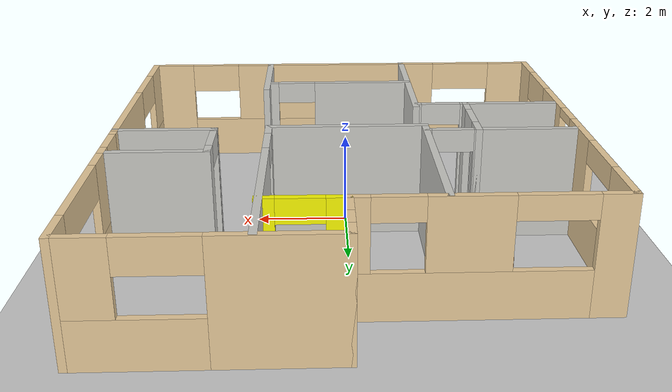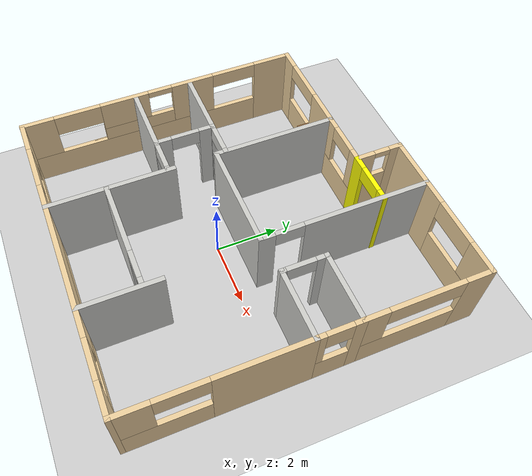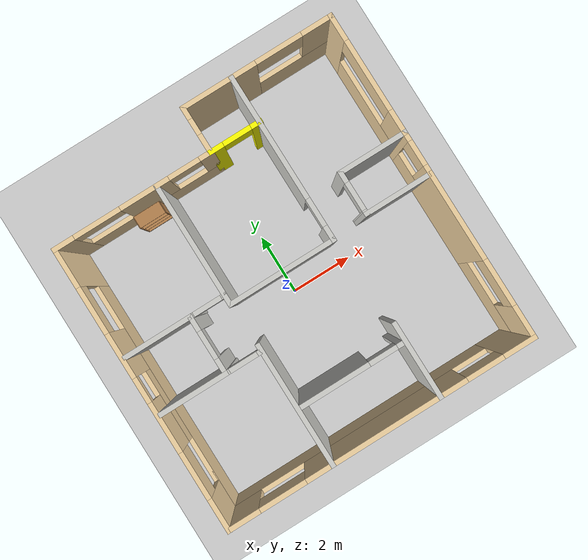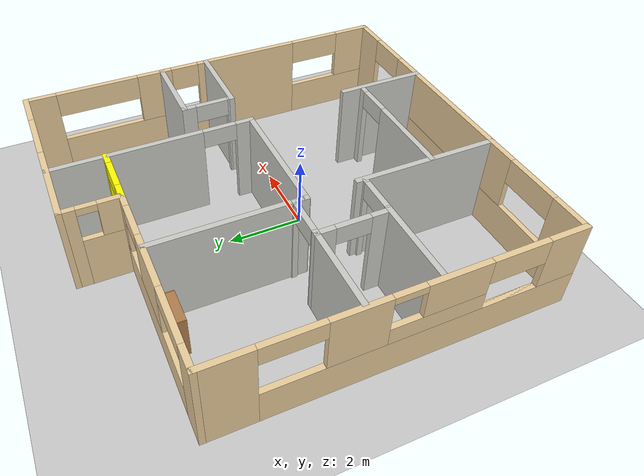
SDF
<sdf version="1.7">
 <world name="default">
  <model name="ground_plane">
   <static>1</static>
   <link name="link">
    <collision name="collision">
     <geometry><plane><normal>0 0 1</normal><size>100 100</size></plane></geometry>
     <surface>
      <contact><collide_bitmask>65535</collide_bitmask></contact>
      <friction><ode><mu>100</mu><mu2>50</mu2></ode></friction>
     </surface>
    </collision>
    <visual name="visual">
     <cast_shadows>0</cast_shadows>
     <geometry><plane><normal>0 0 1</normal><size>100 100</size></plane></geometry>
     <material>
      <script><uri>file://media/materials/scripts/gazebo.material</uri><name>Gazebo/Grey</name></script>
     </material>
    </visual>
   </link>
  </model>
  <model name="house">
   <pose>-0.04268 0.71028 0 0 -0 0</pose>
   <link name="Wall_107">
    <collision name="Wall_107_Collision">
     <geometry><box><size>2.5 0.15 2.5</size></box></geometry>
     <pose>0 0 1.25 0 -0 0</pose>
    </collision>
    <visual name="Wall_107_Visual">
     <pose>0 0 1.25 0 -0 0</pose>
     <geometry><box><size>2.5 0.15 2.5</size></box></geometry>
     <material>
      <script><uri>file://media/materials/scripts/gazebo.material</uri><name>Gazebo/CeilingTiled</name></script>
      <ambient>1 1 0 1</ambient>
     </material>
     <meta><layer>0</layer></meta>
    </visual>
    <pose>1.9029 -4.09927 0 0 -0 -1.5708</pose>
   </link>
   <link name="Wall_109">
    <collision name="Wall_109_Collision">
     <geometry><box><size>4 0.15 2.5</size></box></geometry>
     <pose>0 0 1.25 0 -0 0</pose>
    </collision>
    <visual name="Wall_109_Visual">
     <pose>0 0 1.25 0 -0 0</pose>
     <geometry><box><size>4 0.15 2.5</size></box></geometry>
     <material>
      <script><uri>file://media/materials/scripts/gazebo.material</uri><name>Gazebo/CeilingTiled</name></script>
      <ambient>1 1 0 1</ambient>
     </material>
     <meta><layer>0</layer></meta>
    </visual>
    <pose>-1.60432 -3.35052 0 0 -0 1.5708</pose>
   </link>
   <link name="Wall_120">
    <pose>-4.9695 -0.7265 0 0 -0 -1.5708</pose>
    <visual name="Wall_120_Visual_0">
     <pose>-3.96516 0 1.25 0 -0 0</pose>
     <geometry><box><size>1.31967 0.15 2.5</size></box></geometry>
     <material>
      <script><uri>file://media/materials/scripts/gazebo.material</uri><name>Gazebo/Grey</name></script>
      <ambient>0.921569 0.807843 0.615686 1</ambient>
     </material>
     <meta><layer>0</layer></meta>
    </visual>
    <collision name="Wall_120_Collision_0">
     <geometry><box><size>1.31967 0.15 2.5</size></box></geometry>
     <pose>-3.96516 0 1.25 0 -0 0</pose>
    </collision>
    <visual name="Wall_120_Visual_1">
     <pose>0.659837 0 0.5 0 -0 0</pose>
     <geometry><box><size>7.93032 0.15 1</size></box></geometry>
     <material>
      <script><uri>file://media/materials/scripts/gazebo.material</uri><name>Gazebo/Grey</name></script>
      <ambient>0.921569 0.807843 0.615686 1</ambient>
     </material>
     <meta><layer>0</layer></meta>
    </visual>
    <collision name="Wall_120_Collision_1">
     <geometry><box><size>7.93032 0.15 1</size></box></geometry>
     <pose>0.659837 0 0.5 0 -0 0</pose>
    </collision>
    <visual name="Wall_120_Visual_2">
     <pose>-1.08602 0 1.75 0 -0 0</pose>
     <geometry><box><size>1.4386 0.15 1.5</size></box></geometry>
     <material>
      <script><uri>file://media/materials/scripts/gazebo.material</uri><name>Gazebo/Grey</name></script>
      <ambient>0.921569 0.807843 0.615686 1</ambient>
     </material>
     <meta><layer>0</layer></meta>
    </visual>
    <collision name="Wall_120_Collision_2">
     <geometry><box><size>1.4386 0.15 1.5</size></box></geometry>
     <pose>-1.08602 0 1.75 0 -0 0</pose>
    </collision>
    <visual name="Wall_120_Visual_3">
     <pose>4.08435 0 1.75 0 -0 0</pose>
     <geometry><box><size>1.0813 0.15 1.5</size></box></geometry>
     <material>
      <script><uri>file://media/materials/scripts/gazebo.material</uri><name>Gazebo/Grey</name></script>
      <ambient>0.921569 0.807843 0.615686 1</ambient>
     </material>
     <meta><layer>0</layer></meta>
    </visual>
    <collision name="Wall_120_Collision_3">
     <geometry><box><size>1.0813 0.15 1.5</size></box></geometry>
     <pose>4.08435 0 1.75 0 -0 0</pose>
    </collision>
    <visual name="Wall_120_Visual_4">
     <pose>0.838487 0 1.25 0 -0 0</pose>
     <geometry><box><size>2.41042 0.15 0.5</size></box></geometry>
     <material>
      <script><uri>file://media/materials/scripts/gazebo.material</uri><name>Gazebo/Grey</name></script>
      <ambient>0.921569 0.807843 0.615686 1</ambient>
     </material>
     <meta><layer>0</layer></meta>
    </visual>
    <collision name="Wall_120_Collision_4">
     <geometry><box><size>2.41042 0.15 0.5</size></box></geometry>
     <pose>0.838487 0 1.25 0 -0 0</pose>
    </collision>
    <visual name="Wall_120_Visual_5">
     <pose>2.7937 0 1 0 -0 0</pose>
     <geometry><box><size>1.5 0.15 0</size></box></geometry>
     <material>
      <script><uri>file://media/materials/scripts/gazebo.material</uri><name>Gazebo/Grey</name></script>
      <ambient>0.921569 0.807843 0.615686 1</ambient>
     </material>
     <meta><layer>0</layer></meta>
    </visual>
    <collision name="Wall_120_Collision_5">
     <geometry><box><size>1.5 0.15 0</size></box></geometry>
     <pose>2.7937 0 1 0 -0 0</pose>
    </collision>
    <visual name="Wall_120_Visual_6">
     <pose>1.23849 0 2 0 -0 0</pose>
     <geometry><box><size>1.61042 0.15 1</size></box></geometry>
     <material>
      <script><uri>file://media/materials/scripts/gazebo.material</uri><name>Gazebo/Grey</name></script>
      <ambient>0.921569 0.807843 0.615686 1</ambient>
     </material>
     <meta><layer>0</layer></meta>
    </visual>
    <collision name="Wall_120_Collision_6">
     <geometry><box><size>1.61042 0.15 1</size></box></geometry>
     <pose>1.23849 0 2 0 -0 0</pose>
    </collision>
    <visual name="Wall_120_Visual_7">
     <pose>2.7937 0 2.15 0 -0 0</pose>
     <geometry><box><size>1.5 0.15 0.7</size></box></geometry>
     <material>
      <script><uri>file://media/materials/scripts/gazebo.material</uri><name>Gazebo/Grey</name></script>
      <ambient>0.921569 0.807843 0.615686 1</ambient>
     </material>
     <meta><layer>0</layer></meta>
    </visual>
    <collision name="Wall_120_Collision_7">
     <geometry><box><size>1.5 0.15 0.7</size></box></geometry>
     <pose>2.7937 0 2.15 0 -0 0</pose>
    </collision>
    <visual name="Wall_120_Visual_8">
     <pose>-2.55532 0 2.25 0 -0 0</pose>
     <geometry><box><size>1.5 0.15 0.5</size></box></geometry>
     <material>
      <script><uri>file://media/materials/scripts/gazebo.material</uri><name>Gazebo/Grey</name></script>
      <ambient>0.921569 0.807843 0.615686 1</ambient>
     </material>
     <meta><layer>0</layer></meta>
    </visual>
    <collision name="Wall_120_Collision_8">
     <geometry><box><size>1.5 0.15 0.5</size></box></geometry>
     <pose>-2.55532 0 2.25 0 -0 0</pose>
    </collision>
    <visual name="Wall_120_Visual_9">
     <pose>0.033278 0 2.4 0 -0 0</pose>
     <geometry><box><size>0.8 0.15 0.2</size></box></geometry>
     <material>
      <script><uri>file://media/materials/scripts/gazebo.material</uri><name>Gazebo/Grey</name></script>
      <ambient>0.921569 0.807843 0.615686 1</ambient>
     </material>
     <meta><layer>0</layer></meta>
    </visual>
    <collision name="Wall_120_Collision_9">
     <geometry><box><size>0.8 0.15 0.2</size></box></geometry>
     <pose>0.033278 0 2.4 0 -0 0</pose>
    </collision>
   </link>
   <link name="Wall_131">
    <pose>-2.774 -0.669222 0 0 -0 1.5708</pose>
    <visual name="Wall_131_Visual_0">
     <pose>-0.72 0 1.25 0 -0 0</pose>
     <geometry><box><size>0.559999 0.15 2.5</size></box></geometry>
     <material>
      <script><uri>file://media/materials/scripts/gazebo.material</uri><name>Gazebo/CeilingTiled</name></script>
      <ambient>1 1 0 1</ambient>
     </material>
     <meta><layer>0</layer></meta>
    </visual>
    <collision name="Wall_131_Collision_0">
     <geometry><box><size>0.559999 0.15 2.5</size></box></geometry>
     <pose>-0.72 0 1.25 0 -0 0</pose>
    </collision>
    <visual name="Wall_131_Visual_1">
     <pose>0.73 0 1.25 0 -0 0</pose>
     <geometry><box><size>0.540001 0.15 2.5</size></box></geometry>
     <material>
      <script><uri>file://media/materials/scripts/gazebo.material</uri><name>Gazebo/CeilingTiled</name></script>
      <ambient>1 1 0 1</ambient>
     </material>
     <meta><layer>0</layer></meta>
    </visual>
    <collision name="Wall_131_Collision_1">
     <geometry><box><size>0.540001 0.15 2.5</size></box></geometry>
     <pose>0.73 0 1.25 0 -0 0</pose>
    </collision>
    <visual name="Wall_131_Visual_2">
     <pose>0.009999 0 2.25 0 -0 0</pose>
     <geometry><box><size>0.9 0.15 0.5</size></box></geometry>
     <material>
      <script><uri>file://media/materials/scripts/gazebo.material</uri><name>Gazebo/CeilingTiled</name></script>
      <ambient>1 1 0 1</ambient>
     </material>
     <meta><layer>0</layer></meta>
    </visual>
    <collision name="Wall_131_Collision_2">
     <geometry><box><size>0.9 0.15 0.5</size></box></geometry>
     <pose>0.009999 0 2.25 0 -0 0</pose>
    </collision>
   </link>
   <link name="Wall_132">
    <collision name="Wall_132_Collision">
     <geometry><box><size>2.25 0.15 2.5</size></box></geometry>
     <pose>0 0 1.25 0 -0 0</pose>
    </collision>
    <visual name="Wall_132_Visual">
     <pose>0 0 1.25 0 -0 0</pose>
     <geometry><box><size>2.25 0.15 2.5</size></box></geometry>
     <material>
      <script><uri>file://media/materials/scripts/gazebo.material</uri><name>Gazebo/CeilingTiled</name></script>
      <ambient>1 1 0 1</ambient>
     </material>
     <meta><layer>0</layer></meta>
    </visual>
    <pose>-3.824 0.255778 0 0 -0 3.14159</pose>
   </link>
   <link name="Wall_137">
    <pose>-2.4195 3.8235 0 0 -0 0</pose>
    <visual name="Wall_137_Visual_0">
     <pose>-2.27291 0 1.25 0 -0 0</pose>
     <geometry><box><size>0.70419 0.15 2.5</size></box></geometry>
     <material>
      <script><uri>file://media/materials/scripts/gazebo.material</uri><name>Gazebo/Grey</name></script>
      <ambient>0.921569 0.807843 0.615686 1</ambient>
     </material>
     <meta><layer>0</layer></meta>
    </visual>
    <collision name="Wall_137_Collision_0">
     <geometry><box><size>0.70419 0.15 2.5</size></box></geometry>
     <pose>-2.27291 0 1.25 0 -0 0</pose>
    </collision>
    <visual name="Wall_137_Visual_1">
     <pose>0.352095 0 0.5 0 -0 0</pose>
     <geometry><box><size>4.54581 0.15 1</size></box></geometry>
     <material>
      <script><uri>file://media/materials/scripts/gazebo.material</uri><name>Gazebo/Grey</name></script>
      <ambient>0.921569 0.807843 0.615686 1</ambient>
     </material>
     <meta><layer>0</layer></meta>
    </visual>
    <collision name="Wall_137_Collision_1">
     <geometry><box><size>4.54581 0.15 1</size></box></geometry>
     <pose>0.352095 0 0.5 0 -0 0</pose>
    </collision>
    <visual name="Wall_137_Visual_2">
     <pose>0.373282 0 1.75 0 -0 0</pose>
     <geometry><box><size>1.58818 0.15 1.5</size></box></geometry>
     <material>
      <script><uri>file://media/materials/scripts/gazebo.material</uri><name>Gazebo/Grey</name></script>
      <ambient>0.921569 0.807843 0.615686 1</ambient>
     </material>
     <meta><layer>0</layer></meta>
    </visual>
    <collision name="Wall_137_Collision_2">
     <geometry><box><size>1.58818 0.15 1.5</size></box></geometry>
     <pose>0.373282 0 1.75 0 -0 0</pose>
    </collision>
    <visual name="Wall_137_Visual_3">
     <pose>2.39619 0 1.75 0 -0 0</pose>
     <geometry><box><size>0.457627 0.15 1.5</size></box></geometry>
     <material>
      <script><uri>file://media/materials/scripts/gazebo.material</uri><name>Gazebo/Grey</name></script>
      <ambient>0.921569 0.807843 0.615686 1</ambient>
     </material>
     <meta><layer>0</layer></meta>
    </visual>
    <collision name="Wall_137_Collision_3">
     <geometry><box><size>0.457627 0.15 1.5</size></box></geometry>
     <pose>2.39619 0 1.75 0 -0 0</pose>
    </collision>
    <visual name="Wall_137_Visual_4">
     <pose>-1.17081 0 2.25 0 -0 0</pose>
     <geometry><box><size>1.5 0.15 0.5</size></box></geometry>
     <material>
      <script><uri>file://media/materials/scripts/gazebo.material</uri><name>Gazebo/Grey</name></script>
      <ambient>0.921569 0.807843 0.615686 1</ambient>
     </material>
     <meta><layer>0</layer></meta>
    </visual>
    <collision name="Wall_137_Collision_4">
     <geometry><box><size>1.5 0.15 0.5</size></box></geometry>
     <pose>-1.17081 0 2.25 0 -0 0</pose>
    </collision>
    <visual name="Wall_137_Visual_5">
     <pose>1.66737 0 2.25 0 -0 0</pose>
     <geometry><box><size>1 0.15 0.5</size></box></geometry>
     <material>
      <script><uri>file://media/materials/scripts/gazebo.material</uri><name>Gazebo/Grey</name></script>
      <ambient>0.921569 0.807843 0.615686 1</ambient>
     </material>
     <meta><layer>0</layer></meta>
    </visual>
    <collision name="Wall_137_Collision_5">
     <geometry><box><size>1 0.15 0.5</size></box></geometry>
     <pose>1.66737 0 2.25 0 -0 0</pose>
    </collision>
   </link>
   <link name="Wall_142">
    <pose>0.094094 -3.47845 0 0 -0 0</pose>
    <visual name="Wall_142_Visual_0">
     <pose>-0.559233 0 1.25 0 -0 0</pose>
     <geometry><box><size>2.38153 0.15 2.5</size></box></geometry>
     <material>
      <script><uri>file://media/materials/scripts/gazebo.material</uri><name>Gazebo/CeilingTiled</name></script>
      <ambient>1 1 0 1</ambient>
     </material>
     <meta><layer>0</layer></meta>
    </visual>
    <collision name="Wall_142_Collision_0">
     <geometry><box><size>2.38153 0.15 2.5</size></box></geometry>
     <pose>-0.559233 0 1.25 0 -0 0</pose>
    </collision>
    <visual name="Wall_142_Visual_1">
     <pose>1.64077 0 1.25 0 -0 0</pose>
     <geometry><box><size>0.218467 0.15 2.5</size></box></geometry>
     <material>
      <script><uri>file://media/materials/scripts/gazebo.material</uri><name>Gazebo/CeilingTiled</name></script>
      <ambient>1 1 0 1</ambient>
     </material>
     <meta><layer>0</layer></meta>
    </visual>
    <collision name="Wall_142_Collision_1">
     <geometry><box><size>0.218467 0.15 2.5</size></box></geometry>
     <pose>1.64077 0 1.25 0 -0 0</pose>
    </collision>
    <visual name="Wall_142_Visual_2">
     <pose>1.08153 0 2.25 0 -0 0</pose>
     <geometry><box><size>0.9 0.15 0.5</size></box></geometry>
     <material>
      <script><uri>file://media/materials/scripts/gazebo.material</uri><name>Gazebo/CeilingTiled</name></script>
      <ambient>1 1 0 1</ambient>
     </material>
     <meta><layer>0</layer></meta>
    </visual>
    <collision name="Wall_142_Collision_2">
     <geometry><box><size>0.9 0.15 0.5</size></box></geometry>
     <pose>1.08153 0 2.25 0 -0 0</pose>
    </collision>
   </link>
   <link name="Wall_144">
    <pose>-2.224 -1.59422 0 0 -0 0</pose>
    <visual name="Wall_144_Visual_0">
     <pose>-0.522492 0 1.25 0 -0 0</pose>
     <geometry><box><size>0.205015 0.15 2.5</size></box></geometry>
     <material>
      <script><uri>file://media/materials/scripts/gazebo.material</uri><name>Gazebo/CeilingTiled</name></script>
      <ambient>1 1 0 1</ambient>
     </material>
     <meta><layer>0</layer></meta>
    </visual>
    <collision name="Wall_144_Collision_0">
     <geometry><box><size>0.205015 0.15 2.5</size></box></geometry>
     <pose>-0.522492 0 1.25 0 -0 0</pose>
    </collision>
    <visual name="Wall_144_Visual_1">
     <pose>0.552508 0 1.25 0 -0 0</pose>
     <geometry><box><size>0.144985 0.15 2.5</size></box></geometry>
     <material>
      <script><uri>file://media/materials/scripts/gazebo.material</uri><name>Gazebo/CeilingTiled</name></script>
      <ambient>1 1 0 1</ambient>
     </material>
     <meta><layer>0</layer></meta>
    </visual>
    <collision name="Wall_144_Collision_1">
     <geometry><box><size>0.144985 0.15 2.5</size></box></geometry>
     <pose>0.552508 0 1.25 0 -0 0</pose>
    </collision>
    <visual name="Wall_144_Visual_2">
     <pose>0.030015 0 2.25 0 -0 0</pose>
     <geometry><box><size>0.9 0.15 0.5</size></box></geometry>
     <material>
      <script><uri>file://media/materials/scripts/gazebo.material</uri><name>Gazebo/CeilingTiled</name></script>
      <ambient>1 1 0 1</ambient>
     </material>
     <meta><layer>0</layer></meta>
    </visual>
    <collision name="Wall_144_Collision_2">
     <geometry><box><size>0.9 0.15 0.5</size></box></geometry>
     <pose>0.030015 0 2.25 0 -0 0</pose>
    </collision>
   </link>
   <link name="Wall_148">
    <pose>-2.224 0.255778 0 0 -0 0</pose>
    <visual name="Wall_148_Visual_0">
     <pose>-0.534251 0 1.25 0 -0 0</pose>
     <geometry><box><size>0.181499 0.15 2.5</size></box></geometry>
     <material>
      <script><uri>file://media/materials/scripts/gazebo.material</uri><name>Gazebo/CeilingTiled</name></script>
      <ambient>1 1 0 1</ambient>
     </material>
     <meta><layer>0</layer></meta>
    </visual>
    <collision name="Wall_148_Collision_0">
     <geometry><box><size>0.181499 0.15 2.5</size></box></geometry>
     <pose>-0.534251 0 1.25 0 -0 0</pose>
    </collision>
    <visual name="Wall_148_Visual_1">
     <pose>0.540749 0 1.25 0 -0 0</pose>
     <geometry><box><size>0.168501 0.15 2.5</size></box></geometry>
     <material>
      <script><uri>file://media/materials/scripts/gazebo.material</uri><name>Gazebo/CeilingTiled</name></script>
      <ambient>1 1 0 1</ambient>
     </material>
     <meta><layer>0</layer></meta>
    </visual>
    <collision name="Wall_148_Collision_1">
     <geometry><box><size>0.168501 0.15 2.5</size></box></geometry>
     <pose>0.540749 0 1.25 0 -0 0</pose>
    </collision>
    <visual name="Wall_148_Visual_2">
     <pose>0.006499 0 2.25 0 -0 0</pose>
     <geometry><box><size>0.9 0.15 0.5</size></box></geometry>
     <material>
      <script><uri>file://media/materials/scripts/gazebo.material</uri><name>Gazebo/CeilingTiled</name></script>
      <ambient>1 1 0 1</ambient>
     </material>
     <meta><layer>0</layer></meta>
    </visual>
    <collision name="Wall_148_Collision_2">
     <geometry><box><size>0.9 0.15 0.5</size></box></geometry>
     <pose>0.006499 0 2.25 0 -0 0</pose>
    </collision>
   </link>
   <link name="Wall_159">
    <pose>1.7115 2.606 0 0 -0 1.5708</pose>
    <visual name="Wall_159_Visual_0">
     <pose>-2.465 0 1.25 0 -0 0</pose>
     <geometry><box><size>0.520748 0.15 2.5</size></box></geometry>
     <material>
      <script><uri>file://media/materials/scripts/gazebo.material</uri><name>Gazebo/CeilingTiled</name></script>
      <ambient>1 1 0 1</ambient>
     </material>
     <meta><layer>0</layer></meta>
    </visual>
    <collision name="Wall_159_Collision_0">
     <geometry><box><size>0.520748 0.15 2.5</size></box></geometry>
     <pose>-2.465 0 1.25 0 -0 0</pose>
    </collision>
    <visual name="Wall_159_Visual_1">
     <pose>0.710374 0 1.25 0 -0 0</pose>
     <geometry><box><size>4.02999 0.15 2.5</size></box></geometry>
     <material>
      <script><uri>file://media/materials/scripts/gazebo.material</uri><name>Gazebo/CeilingTiled</name></script>
      <ambient>1 1 0 1</ambient>
     </material>
     <meta><layer>0</layer></meta>
    </visual>
    <collision name="Wall_159_Collision_1">
     <geometry><box><size>4.02999 0.15 2.5</size></box></geometry>
     <pose>0.710374 0 1.25 0 -0 0</pose>
    </collision>
    <visual name="Wall_159_Visual_2">
     <pose>-1.75462 0 2.25 0 -0 0</pose>
     <geometry><box><size>0.9 0.15 0.5</size></box></geometry>
     <material>
      <script><uri>file://media/materials/scripts/gazebo.material</uri><name>Gazebo/CeilingTiled</name></script>
      <ambient>1 1 0 1</ambient>
     </material>
     <meta><layer>0</layer></meta>
    </visual>
    <collision name="Wall_159_Collision_2">
     <geometry><box><size>0.9 0.15 0.5</size></box></geometry>
     <pose>-1.75462 0 2.25 0 -0 0</pose>
    </collision>
   </link>
   <link name="Wall_161">
    <pose>0.9305 3.8235 0 0 -0 0</pose>
    <visual name="Wall_161_Visual_0">
     <pose>-0.637254 0 1.25 0 -0 0</pose>
     <geometry><box><size>0.475492 0.15 2.5</size></box></geometry>
     <material>
      <script><uri>file://media/materials/scripts/gazebo.material</uri><name>Gazebo/Grey</name></script>
      <ambient>1 1 0 1</ambient>
     </material>
     <meta><layer>0</layer></meta>
    </visual>
    <collision name="Wall_161_Collision_0">
     <geometry><box><size>0.475492 0.15 2.5</size></box></geometry>
     <pose>-0.637254 0 1.25 0 -0 0</pose>
    </collision>
    <visual name="Wall_161_Visual_1">
     <pose>0.687746 0 1.25 0 -0 0</pose>
     <geometry><box><size>0.374508 0.15 2.5</size></box></geometry>
     <material>
      <script><uri>file://media/materials/scripts/gazebo.material</uri><name>Gazebo/Grey</name></script>
      <ambient>1 1 0 1</ambient>
     </material>
     <meta><layer>0</layer></meta>
    </visual>
    <collision name="Wall_161_Collision_1">
     <geometry><box><size>0.374508 0.15 2.5</size></box></geometry>
     <pose>0.687746 0 1.25 0 -0 0</pose>
    </collision>
    <visual name="Wall_161_Visual_2">
     <pose>0.050492 0 2.25 0 -0 0</pose>
     <geometry><box><size>0.9 0.15 0.5</size></box></geometry>
     <material>
      <script><uri>file://media/materials/scripts/gazebo.material</uri><name>Gazebo/Grey</name></script>
      <ambient>1 1 0 1</ambient>
     </material>
     <meta><layer>0</layer></meta>
    </visual>
    <collision name="Wall_161_Collision_2">
     <geometry><box><size>0.9 0.15 0.5</size></box></geometry>
     <pose>0.050492 0 2.25 0 -0 0</pose>
    </collision>
   </link>
   <link name="Wall_38">
    <pose>2.5445 5.2765 0 0 -0 0</pose>
    <visual name="Wall_38_Visual_0">
     <pose>-1.27127 0 1.25 0 -0 0</pose>
     <geometry><box><size>2.45747 0.15 2.5</size></box></geometry>
     <material>
      <script><uri>file://media/materials/scripts/gazebo.material</uri><name>Gazebo/Grey</name></script>
      <ambient>0.921569 0.807843 0.615686 1</ambient>
     </material>
     <meta><layer>0</layer></meta>
    </visual>
    <collision name="Wall_38_Collision_0">
     <geometry><box><size>2.45747 0.15 2.5</size></box></geometry>
     <pose>-1.27127 0 1.25 0 -0 0</pose>
    </collision>
    <visual name="Wall_38_Visual_1">
     <pose>1.22873 0 0.5 0 -0 0</pose>
     <geometry><box><size>2.54253 0.15 1</size></box></geometry>
     <material>
      <script><uri>file://media/materials/scripts/gazebo.material</uri><name>Gazebo/Grey</name></script>
      <ambient>0.921569 0.807843 0.615686 1</ambient>
     </material>
     <meta><layer>0</layer></meta>
    </visual>
    <collision name="Wall_38_Collision_1">
     <geometry><box><size>2.54253 0.15 1</size></box></geometry>
     <pose>1.22873 0 0.5 0 -0 0</pose>
    </collision>
    <visual name="Wall_38_Visual_2">
     <pose>1.97873 0 1.75 0 -0 0</pose>
     <geometry><box><size>1.04253 0.15 1.5</size></box></geometry>
     <material>
      <script><uri>file://media/materials/scripts/gazebo.material</uri><name>Gazebo/Grey</name></script>
      <ambient>0.921569 0.807843 0.615686 1</ambient>
     </material>
     <meta><layer>0</layer></meta>
    </visual>
    <collision name="Wall_38_Collision_2">
     <geometry><box><size>1.04253 0.15 1.5</size></box></geometry>
     <pose>1.97873 0 1.75 0 -0 0</pose>
    </collision>
    <visual name="Wall_38_Visual_3">
     <pose>0.707471 0 2.15 0 -0 0</pose>
     <geometry><box><size>1.5 0.15 0.7</size></box></geometry>
     <material>
      <script><uri>file://media/materials/scripts/gazebo.material</uri><name>Gazebo/Grey</name></script>
      <ambient>0.921569 0.807843 0.615686 1</ambient>
     </material>
     <meta><layer>0</layer></meta>
    </visual>
    <collision name="Wall_38_Collision_3">
     <geometry><box><size>1.5 0.15 0.7</size></box></geometry>
     <pose>0.707471 0 2.15 0 -0 0</pose>
    </collision>
   </link>
   <link name="Wall_59">
    <collision name="Wall_59_Collision">
     <geometry><box><size>2.25 0.15 2.5</size></box></geometry>
     <pose>0 0 1.25 0 -0 0</pose>
    </collision>
    <visual name="Wall_59_Visual">
     <pose>0 0 1.25 0 -0 0</pose>
     <geometry><box><size>2.25 0.15 2.5</size></box></geometry>
     <material>
      <script><uri>file://media/materials/scripts/gazebo.material</uri><name>Gazebo/CeilingTiled</name></script>
      <ambient>1 1 0 1</ambient>
     </material>
     <meta><layer>0</layer></meta>
    </visual>
    <pose>-3.824 -1.59422 0 0 -0 3.14159</pose>
   </link>
   <link name="Wall_62">
    <pose>0.1195 4.6015 0 0 -0 -1.5708</pose>
    <visual name="Wall_62_Visual_0">
     <pose>-0.527407 0 1.25 0 -0 0</pose>
     <geometry><box><size>0.445186 0.15 2.5</size></box></geometry>
     <material>
      <script><uri>file://media/materials/scripts/gazebo.material</uri><name>Gazebo/Grey</name></script>
      <ambient>0.921569 0.807843 0.615686 1</ambient>
     </material>
     <meta><layer>0</layer></meta>
    </visual>
    <collision name="Wall_62_Collision_0">
     <geometry><box><size>0.445186 0.15 2.5</size></box></geometry>
     <pose>-0.527407 0 1.25 0 -0 0</pose>
    </collision>
    <visual name="Wall_62_Visual_1">
     <pose>0.222593 0 0.75 0 -0 0</pose>
     <geometry><box><size>1.05481 0.15 1.5</size></box></geometry>
     <material>
      <script><uri>file://media/materials/scripts/gazebo.material</uri><name>Gazebo/Grey</name></script>
      <ambient>0.921569 0.807843 0.615686 1</ambient>
     </material>
     <meta><layer>0</layer></meta>
    </visual>
    <collision name="Wall_62_Collision_1">
     <geometry><box><size>1.05481 0.15 1.5</size></box></geometry>
     <pose>0.222593 0 0.75 0 -0 0</pose>
    </collision>
    <visual name="Wall_62_Visual_2">
     <pose>0.472593 0 2 0 -0 0</pose>
     <geometry><box><size>0.554814 0.15 1</size></box></geometry>
     <material>
      <script><uri>file://media/materials/scripts/gazebo.material</uri><name>Gazebo/Grey</name></script>
      <ambient>0.921569 0.807843 0.615686 1</ambient>
     </material>
     <meta><layer>0</layer></meta>
    </visual>
    <collision name="Wall_62_Collision_2">
     <geometry><box><size>0.554814 0.15 1</size></box></geometry>
     <pose>0.472593 0 2 0 -0 0</pose>
    </collision>
    <visual name="Wall_62_Visual_3">
     <pose>-0.054814 0 2.4 0 -0 0</pose>
     <geometry><box><size>0.5 0.15 0.2</size></box></geometry>
     <material>
      <script><uri>file://media/materials/scripts/gazebo.material</uri><name>Gazebo/Grey</name></script>
      <ambient>0.921569 0.807843 0.615686 1</ambient>
     </material>
     <meta><layer>0</layer></meta>
    </visual>
    <collision name="Wall_62_Collision_3">
     <geometry><box><size>0.5 0.15 0.2</size></box></geometry>
     <pose>-0.054814 0 2.4 0 -0 0</pose>
    </collision>
   </link>
   <link name="Wall_69">
    <collision name="Wall_69_Collision">
     <geometry><box><size>3.99291 0.15 2.5</size></box></geometry>
     <pose>0 0 1.25 0 -0 0</pose>
    </collision>
    <visual name="Wall_69_Visual">
     <pose>0 0 1.25 0 -0 0</pose>
     <geometry><box><size>3.99291 0.15 2.5</size></box></geometry>
     <material>
      <script><uri>file://media/materials/scripts/gazebo.material</uri><name>Gazebo/CeilingTiled</name></script>
      <ambient>1 1 0 1</ambient>
     </material>
     <meta><layer>0</layer></meta>
    </visual>
    <pose>-1.65193 1.87737 0 0 -0 -1.5708</pose>
   </link>
   <link name="Wall_70">
    <collision name="Wall_70_Collision">
     <geometry><box><size>3.51343 0.15 2.5</size></box></geometry>
     <pose>0 0 1.25 0 -0 0</pose>
    </collision>
    <visual name="Wall_70_Visual">
     <pose>0 0 1.25 0 -0 0</pose>
     <geometry><box><size>3.51343 0.15 2.5</size></box></geometry>
     <material>
      <script><uri>file://media/materials/scripts/gazebo.material</uri><name>Gazebo/CeilingTiled</name></script>
      <ambient>1 1 0 1</ambient>
     </material>
     <meta><layer>0</layer></meta>
    </visual>
    <pose>0.029785 -0.044292 0 0 -0 -0.000123</pose>
   </link>
   <link name="Wall_75">
    <pose>4.9695 3.3515 0 0 -0 -1.5708</pose>
    <visual name="Wall_75_Visual_0">
     <pose>-1.55726 0 1.25 0 -0 0</pose>
     <geometry><box><size>0.885485 0.15 2.5</size></box></geometry>
     <material>
      <script><uri>file://media/materials/scripts/gazebo.material</uri><name>Gazebo/Grey</name></script>
      <ambient>0.921569 0.807843 0.615686 1</ambient>
     </material>
     <meta><layer>0</layer></meta>
    </visual>
    <collision name="Wall_75_Collision_0">
     <geometry><box><size>0.885485 0.15 2.5</size></box></geometry>
     <pose>-1.55726 0 1.25 0 -0 0</pose>
    </collision>
    <visual name="Wall_75_Visual_1">
     <pose>0.442742 0 0.5 0 -0 0</pose>
     <geometry><box><size>3.11451 0.15 1</size></box></geometry>
     <material>
      <script><uri>file://media/materials/scripts/gazebo.material</uri><name>Gazebo/Grey</name></script>
      <ambient>0.921569 0.807843 0.615686 1</ambient>
     </material>
     <meta><layer>0</layer></meta>
    </visual>
    <collision name="Wall_75_Collision_1">
     <geometry><box><size>3.11451 0.15 1</size></box></geometry>
     <pose>0.442742 0 0.5 0 -0 0</pose>
    </collision>
    <visual name="Wall_75_Visual_2">
     <pose>1.59274 0 1.75 0 -0 0</pose>
     <geometry><box><size>0.814515 0.15 1.5</size></box></geometry>
     <material>
      <script><uri>file://media/materials/scripts/gazebo.material</uri><name>Gazebo/Grey</name></script>
      <ambient>0.921569 0.807843 0.615686 1</ambient>
     </material>
     <meta><layer>0</layer></meta>
    </visual>
    <collision name="Wall_75_Collision_2">
     <geometry><box><size>0.814515 0.15 1.5</size></box></geometry>
     <pose>1.59274 0 1.75 0 -0 0</pose>
    </collision>
    <visual name="Wall_75_Visual_3">
     <pose>0.035485 0 2.15 0 -0 0</pose>
     <geometry><box><size>2.3 0.15 0.7</size></box></geometry>
     <material>
      <script><uri>file://media/materials/scripts/gazebo.material</uri><name>Gazebo/Grey</name></script>
      <ambient>0.921569 0.807843 0.615686 1</ambient>
     </material>
     <meta><layer>0</layer></meta>
    </visual>
    <collision name="Wall_75_Collision_3">
     <geometry><box><size>2.3 0.15 0.7</size></box></geometry>
     <pose>0.035485 0 2.15 0 -0 0</pose>
    </collision>
   </link>
   <link name="Wall_78">
    <collision name="Wall_78_Collision">
     <geometry><box><size>2.25 0.15 2.5</size></box></geometry>
     <pose>0 0 1.25 0 -0 0</pose>
    </collision>
    <visual name="Wall_78_Visual">
     <pose>0 0 1.25 0 -0 0</pose>
     <geometry><box><size>2.25 0.15 2.5</size></box></geometry>
     <material>
      <script><uri>file://media/materials/scripts/gazebo.material</uri><name>Gazebo/CeilingTiled</name></script>
      <ambient>1 1 0 1</ambient>
     </material>
     <meta><layer>0</layer></meta>
    </visual>
    <pose>3.9195 1.4265 0 0 -0 3.14159</pose>
   </link>
   <link name="Wall_81">
    <pose>4.9695 0.7515 0 0 -0 -1.5708</pose>
    <visual name="Wall_81_Visual_0">
     <pose>-0.576155 0 1.25 0 -0 0</pose>
     <geometry><box><size>0.347689 0.15 2.5</size></box></geometry>
     <material>
      <script><uri>file://media/materials/scripts/gazebo.material</uri><name>Gazebo/Grey</name></script>
      <ambient>0.921569 0.807843 0.615686 1</ambient>
     </material>
     <meta><layer>0</layer></meta>
    </visual>
    <collision name="Wall_81_Collision_0">
     <geometry><box><size>0.347689 0.15 2.5</size></box></geometry>
     <pose>-0.576155 0 1.25 0 -0 0</pose>
    </collision>
    <visual name="Wall_81_Visual_1">
     <pose>0.173845 0 0.5 0 -0 0</pose>
     <geometry><box><size>1.15231 0.15 1</size></box></geometry>
     <material>
      <script><uri>file://media/materials/scripts/gazebo.material</uri><name>Gazebo/Grey</name></script>
      <ambient>0.921569 0.807843 0.615686 1</ambient>
     </material>
     <meta><layer>0</layer></meta>
    </visual>
    <collision name="Wall_81_Collision_1">
     <geometry><box><size>1.15231 0.15 1</size></box></geometry>
     <pose>0.173845 0 0.5 0 -0 0</pose>
    </collision>
    <visual name="Wall_81_Visual_2">
     <pose>0.573845 0 1.75 0 -0 0</pose>
     <geometry><box><size>0.352311 0.15 1.5</size></box></geometry>
     <material>
      <script><uri>file://media/materials/scripts/gazebo.material</uri><name>Gazebo/Grey</name></script>
      <ambient>0.921569 0.807843 0.615686 1</ambient>
     </material>
     <meta><layer>0</layer></meta>
    </visual>
    <collision name="Wall_81_Collision_2">
     <geometry><box><size>0.352311 0.15 1.5</size></box></geometry>
     <pose>0.573845 0 1.75 0 -0 0</pose>
    </collision>
    <visual name="Wall_81_Visual_3">
     <pose>-0.002311 0 2.15 0 -0 0</pose>
     <geometry><box><size>0.8 0.15 0.7</size></box></geometry>
     <material>
      <script><uri>file://media/materials/scripts/gazebo.material</uri><name>Gazebo/Grey</name></script>
      <ambient>0.921569 0.807843 0.615686 1</ambient>
     </material>
     <meta><layer>0</layer></meta>
    </visual>
    <collision name="Wall_81_Collision_3">
     <geometry><box><size>0.8 0.15 0.7</size></box></geometry>
     <pose>-0.002311 0 2.15 0 -0 0</pose>
    </collision>
   </link>
   <link name="Wall_82">
    <collision name="Wall_82_Collision">
     <geometry><box><size>2.25 0.15 2.5</size></box></geometry>
     <pose>0 0 1.25 0 -0 0</pose>
    </collision>
    <visual name="Wall_82_Visual">
     <pose>0 0 1.25 0 -0 0</pose>
     <geometry><box><size>2.25 0.15 2.5</size></box></geometry>
     <material>
      <script><uri>file://media/materials/scripts/gazebo.material</uri><name>Gazebo/CeilingTiled</name></script>
      <ambient>1 1 0 1</ambient>
     </material>
     <meta><layer>0</layer></meta>
    </visual>
    <pose>3.9195 0.0765 0 0 -0 3.14159</pose>
   </link>
   <link name="Wall_83">
    <pose>2.8695 0.7515 0 0 -0 1.5708</pose>
    <visual name="Wall_83_Visual_0">
     <pose>-0.648933 0 1.25 0 -0 0</pose>
     <geometry><box><size>0.202134 0.15 2.5</size></box></geometry>
     <material>
      <script><uri>file://media/materials/scripts/gazebo.material</uri><name>Gazebo/CeilingTiled</name></script>
      <ambient>1 1 0 1</ambient>
     </material>
     <meta><layer>0</layer></meta>
    </visual>
    <collision name="Wall_83_Collision_0">
     <geometry><box><size>0.202134 0.15 2.5</size></box></geometry>
     <pose>-0.648933 0 1.25 0 -0 0</pose>
    </collision>
    <visual name="Wall_83_Visual_1">
     <pose>0.551067 0 1.25 0 -0 0</pose>
     <geometry><box><size>0.397866 0.15 2.5</size></box></geometry>
     <material>
      <script><uri>file://media/materials/scripts/gazebo.material</uri><name>Gazebo/CeilingTiled</name></script>
      <ambient>1 1 0 1</ambient>
     </material>
     <meta><layer>0</layer></meta>
    </visual>
    <collision name="Wall_83_Collision_1">
     <geometry><box><size>0.397866 0.15 2.5</size></box></geometry>
     <pose>0.551067 0 1.25 0 -0 0</pose>
    </collision>
    <visual name="Wall_83_Visual_2">
     <pose>-0.097866 0 2.25 0 -0 0</pose>
     <geometry><box><size>0.9 0.15 0.5</size></box></geometry>
     <material>
      <script><uri>file://media/materials/scripts/gazebo.material</uri><name>Gazebo/CeilingTiled</name></script>
      <ambient>1 1 0 1</ambient>
     </material>
     <meta><layer>0</layer></meta>
    </visual>
    <collision name="Wall_83_Collision_2">
     <geometry><box><size>0.9 0.15 0.5</size></box></geometry>
     <pose>-0.097866 0 2.25 0 -0 0</pose>
    </collision>
   </link>
   <link name="Wall_85">
    <pose>4.9695 -2.5985 0 0 -0 -1.5708</pose>
    <visual name="Wall_85_Visual_0">
     <pose>-1.30805 0 1.25 0 -0 0</pose>
     <geometry><box><size>2.8839 0.15 2.5</size></box></geometry>
     <material>
      <script><uri>file://media/materials/scripts/gazebo.material</uri><name>Gazebo/Grey</name></script>
      <ambient>0.921569 0.807843 0.615686 1</ambient>
     </material>
     <meta><layer>0</layer></meta>
    </visual>
    <collision name="Wall_85_Collision_0">
     <geometry><box><size>2.8839 0.15 2.5</size></box></geometry>
     <pose>-1.30805 0 1.25 0 -0 0</pose>
    </collision>
    <visual name="Wall_85_Visual_1">
     <pose>1.44195 0 0.5 0 -0 0</pose>
     <geometry><box><size>2.6161 0.15 1</size></box></geometry>
     <material>
      <script><uri>file://media/materials/scripts/gazebo.material</uri><name>Gazebo/Grey</name></script>
      <ambient>0.921569 0.807843 0.615686 1</ambient>
     </material>
     <meta><layer>0</layer></meta>
    </visual>
    <collision name="Wall_85_Collision_1">
     <geometry><box><size>2.6161 0.15 1</size></box></geometry>
     <pose>1.44195 0 0.5 0 -0 0</pose>
    </collision>
    <visual name="Wall_85_Visual_2">
     <pose>2.19195 0 1.75 0 -0 0</pose>
     <geometry><box><size>1.1161 0.15 1.5</size></box></geometry>
     <material>
      <script><uri>file://media/materials/scripts/gazebo.material</uri><name>Gazebo/Grey</name></script>
      <ambient>0.921569 0.807843 0.615686 1</ambient>
     </material>
     <meta><layer>0</layer></meta>
    </visual>
    <collision name="Wall_85_Collision_2">
     <geometry><box><size>1.1161 0.15 1.5</size></box></geometry>
     <pose>2.19195 0 1.75 0 -0 0</pose>
    </collision>
    <visual name="Wall_85_Visual_3">
     <pose>0.883899 0 2.15 0 -0 0</pose>
     <geometry><box><size>1.5 0.15 0.7</size></box></geometry>
     <material>
      <script><uri>file://media/materials/scripts/gazebo.material</uri><name>Gazebo/Grey</name></script>
      <ambient>0.921569 0.807843 0.615686 1</ambient>
     </material>
     <meta><layer>0</layer></meta>
    </visual>
    <collision name="Wall_85_Collision_3">
     <geometry><box><size>1.5 0.15 0.7</size></box></geometry>
     <pose>0.883899 0 2.15 0 -0 0</pose>
    </collision>
   </link>
   <link name="Wall_87">
    <pose>0.0445 -5.2735 0 0 -0 3.14159</pose>
    <visual name="Wall_87_Visual_0">
     <pose>-4.46685 0 1.25 0 -0 0</pose>
     <geometry><box><size>1.06631 0.15 2.5</size></box></geometry>
     <material>
      <script><uri>file://media/materials/scripts/gazebo.material</uri><name>Gazebo/Grey</name></script>
      <ambient>0.921569 0.807843 0.615686 1</ambient>
     </material>
     <meta><layer>0</layer></meta>
    </visual>
    <collision name="Wall_87_Collision_0">
     <geometry><box><size>1.06631 0.15 2.5</size></box></geometry>
     <pose>-4.46685 0 1.25 0 -0 0</pose>
    </collision>
    <visual name="Wall_87_Visual_1">
     <pose>0.533153 0 0.5 0 -0 0</pose>
     <geometry><box><size>8.93369 0.15 1</size></box></geometry>
     <material>
      <script><uri>file://media/materials/scripts/gazebo.material</uri><name>Gazebo/Grey</name></script>
      <ambient>0.921569 0.807843 0.615686 1</ambient>
     </material>
     <meta><layer>0</layer></meta>
    </visual>
    <collision name="Wall_87_Collision_1">
     <geometry><box><size>8.93369 0.15 1</size></box></geometry>
     <pose>0.533153 0 0.5 0 -0 0</pose>
    </collision>
    <visual name="Wall_87_Visual_2">
     <pose>-0.114156 0 1.75 0 -0 0</pose>
     <geometry><box><size>5.23907 0.15 1.5</size></box></geometry>
     <material>
      <script><uri>file://media/materials/scripts/gazebo.material</uri><name>Gazebo/Grey</name></script>
      <ambient>0.921569 0.807843 0.615686 1</ambient>
     </material>
     <meta><layer>0</layer></meta>
    </visual>
    <collision name="Wall_87_Collision_2">
     <geometry><box><size>5.23907 0.15 1.5</size></box></geometry>
     <pose>-0.114156 0 1.75 0 -0 0</pose>
    </collision>
    <visual name="Wall_87_Visual_3">
     <pose>4.50269 0 1.75 0 -0 0</pose>
     <geometry><box><size>0.994619 0.15 1.5</size></box></geometry>
     <material>
      <script><uri>file://media/materials/scripts/gazebo.material</uri><name>Gazebo/Grey</name></script>
      <ambient>0.921569 0.807843 0.615686 1</ambient>
     </material>
     <meta><layer>0</layer></meta>
    </visual>
    <collision name="Wall_87_Collision_3">
     <geometry><box><size>0.994619 0.15 1.5</size></box></geometry>
     <pose>4.50269 0 1.75 0 -0 0</pose>
    </collision>
    <visual name="Wall_87_Visual_4">
     <pose>-3.33369 0 2.15 0 -0 0</pose>
     <geometry><box><size>1.2 0.15 0.7</size></box></geometry>
     <material>
      <script><uri>file://media/materials/scripts/gazebo.material</uri><name>Gazebo/Grey</name></script>
      <ambient>0.921569 0.807843 0.615686 1</ambient>
     </material>
     <meta><layer>0</layer></meta>
    </visual>
    <collision name="Wall_87_Collision_4">
     <geometry><box><size>1.2 0.15 0.7</size></box></geometry>
     <pose>-3.33369 0 2.15 0 -0 0</pose>
    </collision>
    <visual name="Wall_87_Visual_5">
     <pose>3.25538 0 2.15 0 -0 0</pose>
     <geometry><box><size>1.5 0.15 0.7</size></box></geometry>
     <material>
      <script><uri>file://media/materials/scripts/gazebo.material</uri><name>Gazebo/Grey</name></script>
      <ambient>0.921569 0.807843 0.615686 1</ambient>
     </material>
     <meta><layer>0</layer></meta>
    </visual>
    <collision name="Wall_87_Collision_5">
     <geometry><box><size>1.5 0.15 0.7</size></box></geometry>
     <pose>3.25538 0 2.15 0 -0 0</pose>
    </collision>
   </link>
   <static>1</static>
  </model>
  <model name="bookshelf_0">
   <static>1</static>
   <link name="link">
    <inertial><mass>1</mass></inertial>
    <collision name="back">
     <pose>0 0.005 0.6 0 -0 0</pose>
     <geometry><box><size>0.9 0.01 1.2</size></box></geometry>
    </collision>
    <visual name="visual1">
     <pose>0 0.005 0.6 0 -0 0</pose>
     <geometry><box><size>0.9 0.01 1.2</size></box></geometry>
     <material>
      <script><uri>file://media/materials/scripts/gazebo.material</uri><name>Gazebo/Wood</name></script>
     </material>
    </visual>
    <collision name="left_side">
     <pose>0.45 -0.195 0.6 0 -0 0</pose>
     <geometry><box><size>0.02 0.4 1.2</size></box></geometry>
    </collision>
    <visual name="visual2">
     <pose>0.45 -0.195 0.6 0 -0 0</pose>
     <geometry><box><size>0.02 0.4 1.2</size></box></geometry>
     <material>
      <script><uri>file://media/materials/scripts/gazebo.material</uri><name>Gazebo/Wood</name></script>
     </material>
    </visual>
    <collision name="right_side">
     <pose>-0.45 -0.195 0.6 0 -0 0</pose>
     <geometry><box><size>0.02 0.4 1.2</size></box></geometry>
    </collision>
    <visual name="visual3">
     <pose>-0.45 -0.195 0.6 0 -0 0</pose>
     <geometry><box><size>0.02 0.4 1.2</size></box></geometry>
     <material>
      <script><uri>file://media/materials/scripts/gazebo.material</uri><name>Gazebo/Wood</name></script>
     </material>
    </visual>
    <collision name="bottom">
     <pose>0 -0.195 0.03 0 -0 0</pose>
     <geometry><box><size>0.88 0.4 0.06</size></box></geometry>
    </collision>
    <visual name="visual4">
     <pose>0 -0.195 0.03 0 -0 0</pose>
     <geometry><box><size>0.88 0.4 0.06</size></box></geometry>
     <material>
      <script><uri>file://media/materials/scripts/gazebo.material</uri><name>Gazebo/Wood</name></script>
     </material>
    </visual>
    <collision name="top">
     <pose>0 -0.195 1.19 0 -0 0</pose>
     <geometry><box><size>0.88 0.4 0.02</size></box></geometry>
    </collision>
    <visual name="visual5">
     <pose>0 -0.195 1.19 0 -0 0</pose>
     <geometry><box><size>0.88 0.4 0.02</size></box></geometry>
     <material>
      <script><uri>file://media/materials/scripts/gazebo.material</uri><name>Gazebo/Wood</name></script>
     </material>
    </visual>
    <collision name="low_shelf">
     <pose>0 -0.195 0.43 0 -0 0</pose>
     <geometry><box><size>0.88 0.4 0.02</size></box></geometry>
    </collision>
    <visual name="visual6">
     <pose>0 -0.195 0.43 0 -0 0</pose>
     <geometry><box><size>0.88 0.4 0.02</size></box></geometry>
     <material>
      <script><uri>file://media/materials/scripts/gazebo.material</uri><name>Gazebo/Wood</name></script>
     </material>
    </visual>
    <collision name="high_shelf">
     <pose>0 -0.195 0.8 0 -0 0</pose>
     <geometry><box><size>0.88 0.4 0.02</size></box></geometry>
    </collision>
    <visual name="visual7">
     <pose>0 -0.195 0.8 0 -0 0</pose>
     <geometry><box><size>0.88 0.4 0.02</size></box></geometry>
     <material>
      <script><uri>file://media/materials/scripts/gazebo.material</uri><name>Gazebo/Wood</name></script>
     </material>
    </visual>
   </link>
   <pose>-2.46705 4.44804 0 0 -0 0</pose>
  </model>
 </world>
</sdf>
